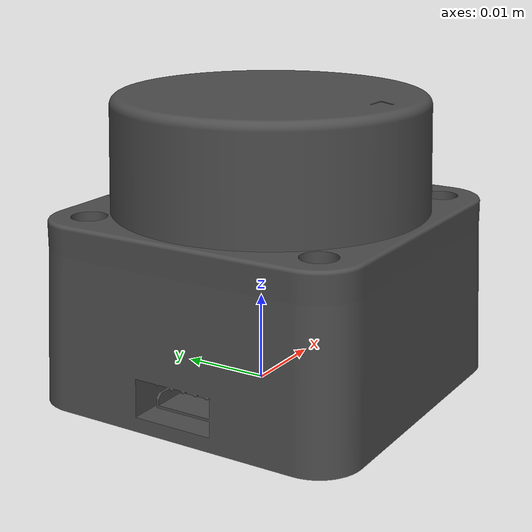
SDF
<?xml version="1.0" ?>
<sdf version="1.5">
  <model name="ld06">
    <pose>0 0 0 0 0 0</pose>

    <link name="base_link">
      <inertial>
        <mass>0.0444</mass>
      </inertial>

      <collision name="ld06_collision">
        <pose>0 0 0.01665 0 0 0</pose>
        <geometry>
          <box>
            <size>0.039 0.039 0.0333 </size>
          </box>
        </geometry>
      </collision>

      <visual name="ld06_visual">
        <!--Calcurate from LD06 3DCAD model-->
        <pose>-0.016259 0.027386 -0.003454 0 0 0</pose>
        <geometry>
          <mesh>
            <uri>model://ld06/meshes/ld06.dae</uri>
          </mesh>
        </geometry>
        <material>
          <script>
            <name>Gazebo/DarkGrey</name>
            <uri>file://media/materials/scripts/gazebo.material</uri>
          </script>
        </material>
      </visual>
    </link>

    <joint name="scan_joint" type="fixed">
      <parent>base_link</parent>
      <child>base_scan</child>
      <!--Calcurate from LD06 Datasheet-->
      <pose>0 0 0.0257 0 0 0</pose>
      <axis>
        <xyz>0 0 1</xyz>
      </axis>
    </joint>

    <link name="base_scan">
      <sensor name="ld06_sensor" type="ray">
        <always_on>true</always_on>
        <visualize>true</visualize>
        <pose>0 0 0.0257 0 0 0</pose>
        <update_rate>5</update_rate>
        <ray>
          <scan>
            <horizontal>
              <samples>360</samples>
              <resolution>1.000000</resolution>
              <min_angle>0.000000</min_angle>
              <max_angle>6.280000</max_angle>
            </horizontal>
          </scan>
          <range>
            <!--Considering the collision model, it is changed from the official value(0.02)-->
            <min>0.04</min>
            <max>12.0</max>
            <resolution>0.015</resolution>
          </range>
          <noise>
            <type>gaussian</type>
            <mean>0.0</mean>
            <stddev>0.01</stddev>
          </noise>
        </ray>
        <plugin name="gazebo_ros_ld06_controller" filename="libgazebo_ros_ray_sensor.so">
          <ros>
            <remapping>~/out:=scan</remapping>
          </ros>
          <output_type>sensor_msgs/LaserScan</output_type>
          <frame_name>base_scan</frame_name>
        </plugin>
      </sensor>
    </link>
  </model>
</sdf>
